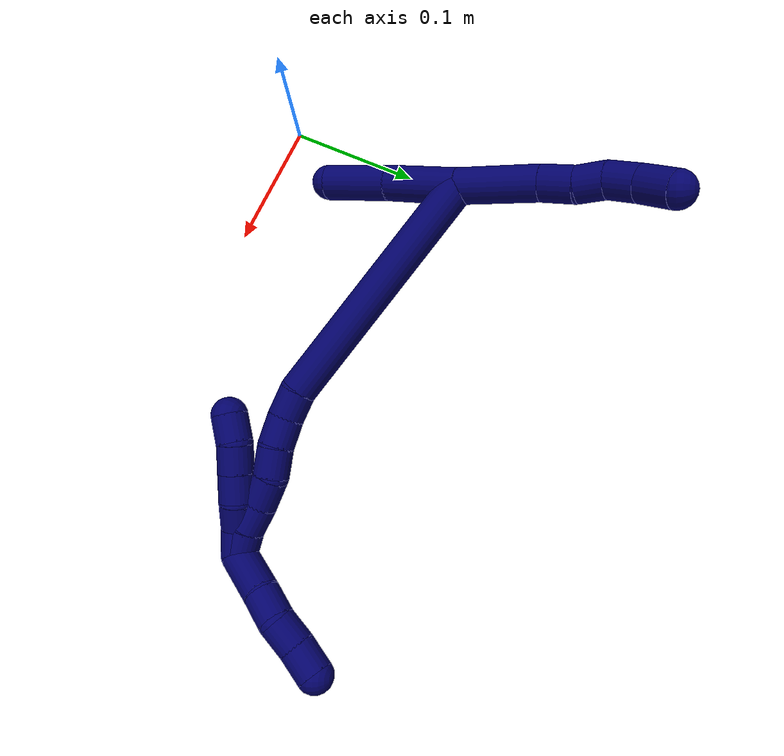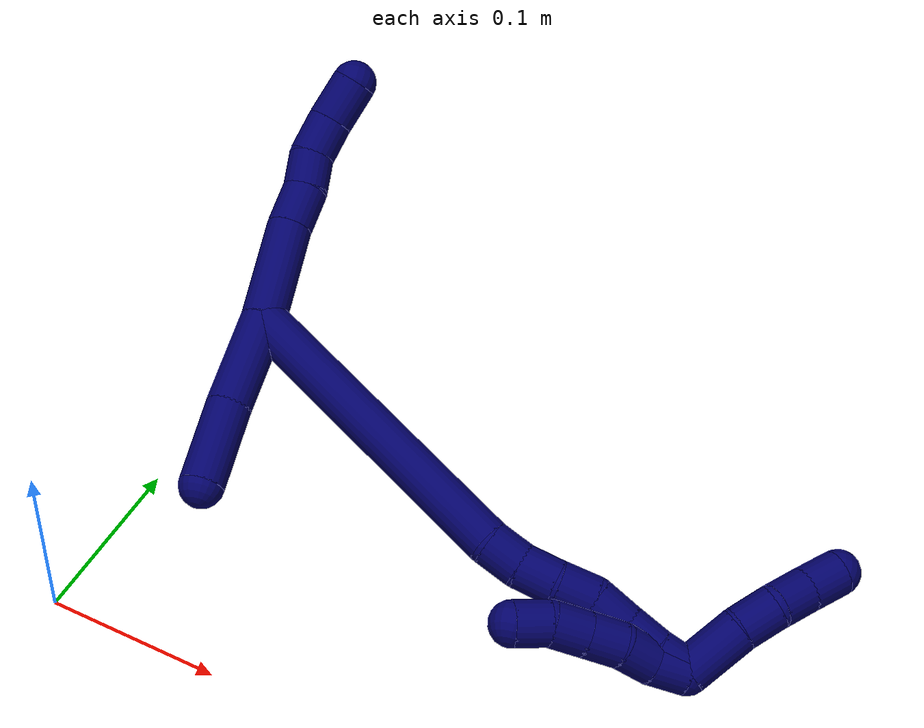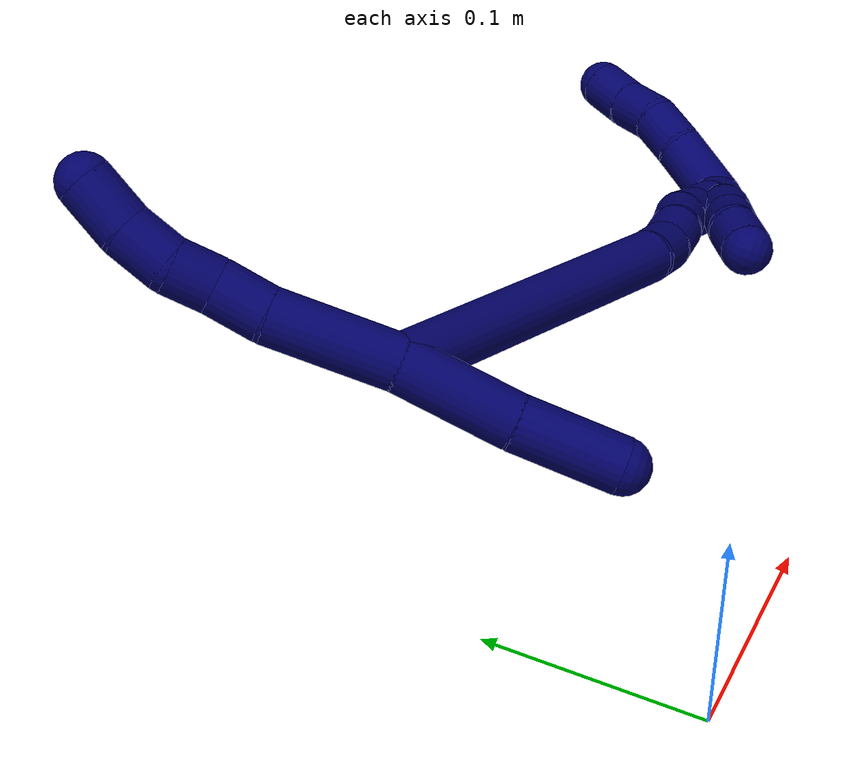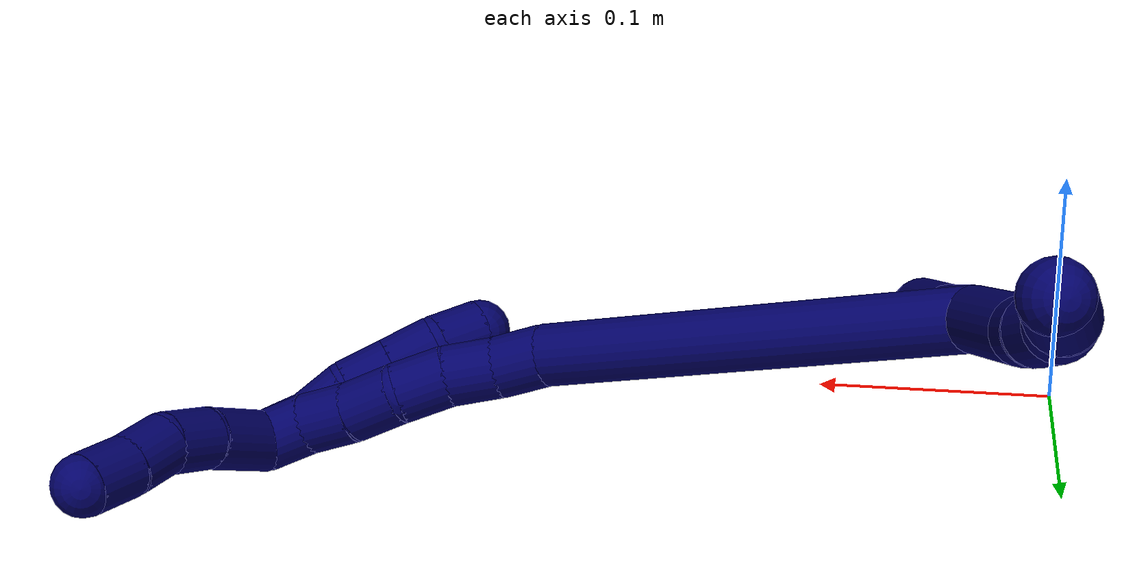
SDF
<sdf version="1.7">
 <world name="default">
  <model name="7">
   <static>0</static>
   <link name="7">
    <collision name="collision-cylinder-e_1_2_8">
     <pose>-7.5e-05 1.5e-05 0.028729 -0.000519 -0.002612 1e-06</pose>
     <geometry><cylinder><radius>0.0125</radius><length>0.057459</length></cylinder></geometry>
     <surface>
      <friction><ode><mu>1.16</mu><mu2>1.16</mu2><slip1>0</slip1><slip2>0</slip2></ode></friction>
      <contact><ode><kp>1e+06</kp><kd>1</kd><max_vel>0</max_vel><min_depth>0.001</min_depth></ode></contact>
     </surface>
    </collision>
    <visual name="visual-cylinder-e_1_2_8">
     <pose>-7.5e-05 1.5e-05 0.028729 -0.000519 -0.002612 1e-06</pose>
     <geometry><cylinder><radius>0.0125</radius><length>0.057459</length></cylinder></geometry>
     <material><ambient>0.003922 0 0.403922 1</ambient></material>
    </visual>
    <collision name="collision-cylinder-e_2_8_9">
     <pose>7.7e-05 -0.001999 0.069347 0.169043 0.018825 0.001595</pose>
     <geometry><cylinder><radius>0.0125</radius><length>0.024125</length></cylinder></geometry>
     <surface>
      <friction><ode><mu>1.16</mu><mu2>1.16</mu2><slip1>0</slip1><slip2>0</slip2></ode></friction>
      <contact><ode><kp>1e+06</kp><kd>1</kd><max_vel>0</max_vel><min_depth>0.001</min_depth></ode></contact>
     </surface>
    </collision>
    <visual name="visual-cylinder-e_2_8_9">
     <pose>7.7e-05 -0.001999 0.069347 0.169043 0.018825 0.001595</pose>
     <geometry><cylinder><radius>0.0125</radius><length>0.024125</length></cylinder></geometry>
     <material><ambient>0.003922 0 0.403922 1</ambient></material>
    </visual>
    <collision name="collision-cylinder-e_3_9_10">
     <pose>-0.001193 -0.004576 0.091278 0.05446 -0.147723 -0.004031</pose>
     <geometry><cylinder><radius>0.0125</radius><length>0.020337</length></cylinder></geometry>
     <surface>
      <friction><ode><mu>1.16</mu><mu2>1.16</mu2><slip1>0</slip1><slip2>0</slip2></ode></friction>
      <contact><ode><kp>1e+06</kp><kd>1</kd><max_vel>0</max_vel><min_depth>0.001</min_depth></ode></contact>
     </surface>
    </collision>
    <visual name="visual-cylinder-e_3_9_10">
     <pose>-0.001193 -0.004576 0.091278 0.05446 -0.147723 -0.004031</pose>
     <geometry><cylinder><radius>0.0125</radius><length>0.020337</length></cylinder></geometry>
     <material><ambient>0.003922 0 0.403922 1</ambient></material>
    </visual>
    <collision name="collision-cylinder-e_4_10_11">
     <pose>-0.00258 -0.008863 0.111946 0.338441 0.009744 0.001665</pose>
     <geometry><cylinder><radius>0.0125</radius><length>0.022529</length></cylinder></geometry>
     <surface>
      <friction><ode><mu>1.16</mu><mu2>1.16</mu2><slip1>0</slip1><slip2>0</slip2></ode></friction>
      <contact><ode><kp>1e+06</kp><kd>1</kd><max_vel>0</max_vel><min_depth>0.001</min_depth></ode></contact>
     </surface>
    </collision>
    <visual name="visual-cylinder-e_4_10_11">
     <pose>-0.00258 -0.008863 0.111946 0.338441 0.009744 0.001665</pose>
     <geometry><cylinder><radius>0.0125</radius><length>0.022529</length></cylinder></geometry>
     <material><ambient>0.003922 0 0.403922 1</ambient></material>
    </visual>
    <collision name="collision-cylinder-e_5_11_6">
     <pose>-0.002725 -0.018938 0.133662 0.518947 -0.019974 -0.005302</pose>
     <geometry><cylinder><radius>0.0125</radius><length>0.02555</length></cylinder></geometry>
     <surface>
      <friction><ode><mu>1.16</mu><mu2>1.16</mu2><slip1>0</slip1><slip2>0</slip2></ode></friction>
      <contact><ode><kp>1e+06</kp><kd>1</kd><max_vel>0</max_vel><min_depth>0.001</min_depth></ode></contact>
     </surface>
    </collision>
    <visual name="visual-cylinder-e_5_11_6">
     <pose>-0.002725 -0.018938 0.133662 0.518947 -0.019974 -0.005302</pose>
     <geometry><cylinder><radius>0.0125</radius><length>0.02555</length></cylinder></geometry>
     <material><ambient>0.003922 0 0.403922 1</ambient></material>
    </visual>
    <collision name="collision-cylinder-e_1_2_12">
     <pose>-0.000745 0.003403 -0.026134 -3.01211 -0.028269 0.429364</pose>
     <geometry><cylinder><radius>0.0125</radius><length>0.05273</length></cylinder></geometry>
     <surface>
      <friction><ode><mu>1.16</mu><mu2>1.16</mu2><slip1>0</slip1><slip2>0</slip2></ode></friction>
      <contact><ode><kp>1e+06</kp><kd>1</kd><max_vel>0</max_vel><min_depth>0.001</min_depth></ode></contact>
     </surface>
    </collision>
    <visual name="visual-cylinder-e_1_2_12">
     <pose>-0.000745 0.003403 -0.026134 -3.01211 -0.028269 0.429364</pose>
     <geometry><cylinder><radius>0.0125</radius><length>0.05273</length></cylinder></geometry>
     <material><ambient>0.003922 0 0.403922 1</ambient></material>
    </visual>
    <collision name="collision-cylinder-e_2_12_5">
     <pose>-0.002142 0.007856 -0.07587 -3.0971 -0.027571 1.10942</pose>
     <geometry><cylinder><radius>0.0125</radius><length>0.04727</length></cylinder></geometry>
     <surface>
      <friction><ode><mu>1.16</mu><mu2>1.16</mu2><slip1>0</slip1><slip2>0</slip2></ode></friction>
      <contact><ode><kp>1e+06</kp><kd>1</kd><max_vel>0</max_vel><min_depth>0.001</min_depth></ode></contact>
     </surface>
    </collision>
    <visual name="visual-cylinder-e_2_12_5">
     <pose>-0.002142 0.007856 -0.07587 -3.0971 -0.027571 1.10942</pose>
     <geometry><cylinder><radius>0.0125</radius><length>0.04727</length></cylinder></geometry>
     <material><ambient>0.003922 0 0.403922 1</ambient></material>
    </visual>
    <collision name="collision-cylinder-e_1_2_13">
     <pose>0.050866 -0.052477 -0.04917 2.32367 0.615621 1.26577</pose>
     <geometry><cylinder><radius>0.0125</radius><length>0.176169</length></cylinder></geometry>
     <surface>
      <friction><ode><mu>1.16</mu><mu2>1.16</mu2><slip1>0</slip1><slip2>0</slip2></ode></friction>
      <contact><ode><kp>1e+06</kp><kd>1</kd><max_vel>0</max_vel><min_depth>0.001</min_depth></ode></contact>
     </surface>
    </collision>
    <visual name="visual-cylinder-e_1_2_13">
     <pose>0.050866 -0.052477 -0.04917 2.32367 0.615621 1.26577</pose>
     <geometry><cylinder><radius>0.0125</radius><length>0.176169</length></cylinder></geometry>
     <material><ambient>0.003922 0 0.403922 1</ambient></material>
    </visual>
    <collision name="collision-cylinder-e_2_13_14">
     <pose>0.109162 -0.110578 -0.102316 2.18611 0.823314 1.40116</pose>
     <geometry><cylinder><radius>0.0125</radius><length>0.020262</length></cylinder></geometry>
     <surface>
      <friction><ode><mu>1.16</mu><mu2>1.16</mu2><slip1>0</slip1><slip2>0</slip2></ode></friction>
      <contact><ode><kp>1e+06</kp><kd>1</kd><max_vel>0</max_vel><min_depth>0.001</min_depth></ode></contact>
     </surface>
    </collision>
    <visual name="visual-cylinder-e_2_13_14">
     <pose>0.109162 -0.110578 -0.102316 2.18611 0.823314 1.40116</pose>
     <geometry><cylinder><radius>0.0125</radius><length>0.020262</length></cylinder></geometry>
     <material><ambient>0.003922 0 0.403922 1</ambient></material>
    </visual>
    <collision name="collision-cylinder-e_3_14_15">
     <pose>0.124027 -0.123216 -0.108755 1.9086 0.785476 1.05802</pose>
     <geometry><cylinder><radius>0.0125</radius><length>0.021026</length></cylinder></geometry>
     <surface>
      <friction><ode><mu>1.16</mu><mu2>1.16</mu2><slip1>0</slip1><slip2>0</slip2></ode></friction>
      <contact><ode><kp>1e+06</kp><kd>1</kd><max_vel>0</max_vel><min_depth>0.001</min_depth></ode></contact>
     </surface>
    </collision>
    <visual name="visual-cylinder-e_3_14_15">
     <pose>0.124027 -0.123216 -0.108755 1.9086 0.785476 1.05802</pose>
     <geometry><cylinder><radius>0.0125</radius><length>0.021026</length></cylinder></geometry>
     <material><ambient>0.003922 0 0.403922 1</ambient></material>
    </visual>
    <collision name="collision-cylinder-e_4_15_16">
     <pose>0.140035 -0.136043 -0.112591 1.80269 0.962254 1.1663</pose>
     <geometry><cylinder><radius>0.0125</radius><length>0.020899</length></cylinder></geometry>
     <surface>
      <friction><ode><mu>1.16</mu><mu2>1.16</mu2><slip1>0</slip1><slip2>0</slip2></ode></friction>
      <contact><ode><kp>1e+06</kp><kd>1</kd><max_vel>0</max_vel><min_depth>0.001</min_depth></ode></contact>
     </surface>
    </collision>
    <visual name="visual-cylinder-e_4_15_16">
     <pose>0.140035 -0.136043 -0.112591 1.80269 0.962254 1.1663</pose>
     <geometry><cylinder><radius>0.0125</radius><length>0.020899</length></cylinder></geometry>
     <material><ambient>0.003922 0 0.403922 1</ambient></material>
    </visual>
    <collision name="collision-cylinder-e_5_16_17">
     <pose>0.157168 -0.146664 -0.118436 2.32005 0.916407 1.69482</pose>
     <geometry><cylinder><radius>0.0125</radius><length>0.021575</length></cylinder></geometry>
     <surface>
      <friction><ode><mu>1.16</mu><mu2>1.16</mu2><slip1>0</slip1><slip2>0</slip2></ode></friction>
      <contact><ode><kp>1e+06</kp><kd>1</kd><max_vel>0</max_vel><min_depth>0.001</min_depth></ode></contact>
     </surface>
    </collision>
    <visual name="visual-cylinder-e_5_16_17">
     <pose>0.157168 -0.146664 -0.118436 2.32005 0.916407 1.69482</pose>
     <geometry><cylinder><radius>0.0125</radius><length>0.021575</length></cylinder></geometry>
     <material><ambient>0.003922 0 0.403922 1</ambient></material>
    </visual>
    <collision name="collision-cylinder-e_6_17_18">
     <pose>0.172986 -0.156857 -0.12724 2.24818 0.809971 1.46004</pose>
     <geometry><cylinder><radius>0.0125</radius><length>0.020045</length></cylinder></geometry>
     <surface>
      <friction><ode><mu>1.16</mu><mu2>1.16</mu2><slip1>0</slip1><slip2>0</slip2></ode></friction>
      <contact><ode><kp>1e+06</kp><kd>1</kd><max_vel>0</max_vel><min_depth>0.001</min_depth></ode></contact>
     </surface>
    </collision>
    <visual name="visual-cylinder-e_6_17_18">
     <pose>0.172986 -0.156857 -0.12724 2.24818 0.809971 1.46004</pose>
     <geometry><cylinder><radius>0.0125</radius><length>0.020045</length></cylinder></geometry>
     <material><ambient>0.003922 0 0.403922 1</ambient></material>
    </visual>
    <collision name="collision-cylinder-e_7_18_1">
     <pose>0.188522 -0.167064 -0.134478 2.11327 0.973431 1.50563</pose>
     <geometry><cylinder><radius>0.0125</radius><length>0.020023</length></cylinder></geometry>
     <surface>
      <friction><ode><mu>1.16</mu><mu2>1.16</mu2><slip1>0</slip1><slip2>0</slip2></ode></friction>
      <contact><ode><kp>1e+06</kp><kd>1</kd><max_vel>0</max_vel><min_depth>0.001</min_depth></ode></contact>
     </surface>
    </collision>
    <visual name="visual-cylinder-e_7_18_1">
     <pose>0.188522 -0.167064 -0.134478 2.11327 0.973431 1.50563</pose>
     <geometry><cylinder><radius>0.0125</radius><length>0.020023</length></cylinder></geometry>
     <material><ambient>0.003922 0 0.403922 1</ambient></material>
    </visual>
    <collision name="collision-cylinder-e_1_1_19">
     <pose>0.201733 -0.182604 -0.124195 0.682309 0.282517 0.100891</pose>
     <geometry><cylinder><radius>0.0125</radius><length>0.035393</length></cylinder></geometry>
     <surface>
      <friction><ode><mu>1.16</mu><mu2>1.16</mu2><slip1>0</slip1><slip2>0</slip2></ode></friction>
      <contact><ode><kp>1e+06</kp><kd>1</kd><max_vel>0</max_vel><min_depth>0.001</min_depth></ode></contact>
     </surface>
    </collision>
    <visual name="visual-cylinder-e_1_1_19">
     <pose>0.201733 -0.182604 -0.124195 0.682309 0.282517 0.100891</pose>
     <geometry><cylinder><radius>0.0125</radius><length>0.035393</length></cylinder></geometry>
     <material><ambient>0.003922 0 0.403922 1</ambient></material>
    </visual>
    <collision name="collision-cylinder-e_2_19_20">
     <pose>0.211361 -0.199742 -0.103363 0.698814 0.439654 0.162464</pose>
     <geometry><cylinder><radius>0.0125</radius><length>0.02206</length></cylinder></geometry>
     <surface>
      <friction><ode><mu>1.16</mu><mu2>1.16</mu2><slip1>0</slip1><slip2>0</slip2></ode></friction>
      <contact><ode><kp>1e+06</kp><kd>1</kd><max_vel>0</max_vel><min_depth>0.001</min_depth></ode></contact>
     </surface>
    </collision>
    <visual name="visual-cylinder-e_2_19_20">
     <pose>0.211361 -0.199742 -0.103363 0.698814 0.439654 0.162464</pose>
     <geometry><cylinder><radius>0.0125</radius><length>0.02206</length></cylinder></geometry>
     <material><ambient>0.003922 0 0.403922 1</ambient></material>
    </visual>
    <collision name="collision-cylinder-e_3_20_21">
     <pose>0.222721 -0.209601 -0.088503 0.444539 0.694868 0.163318</pose>
     <geometry><cylinder><radius>0.0125</radius><length>0.020818</length></cylinder></geometry>
     <surface>
      <friction><ode><mu>1.16</mu><mu2>1.16</mu2><slip1>0</slip1><slip2>0</slip2></ode></friction>
      <contact><ode><kp>1e+06</kp><kd>1</kd><max_vel>0</max_vel><min_depth>0.001</min_depth></ode></contact>
     </surface>
    </collision>
    <visual name="visual-cylinder-e_3_20_21">
     <pose>0.222721 -0.209601 -0.088503 0.444539 0.694868 0.163318</pose>
     <geometry><cylinder><radius>0.0125</radius><length>0.020818</length></cylinder></geometry>
     <material><ambient>0.003922 0 0.403922 1</ambient></material>
    </visual>
    <collision name="collision-cylinder-e_4_21_4">
     <pose>0.235866 -0.217745 -0.073944 0.57005 0.639142 0.193313</pose>
     <geometry><cylinder><radius>0.0125</radius><length>0.021729</length></cylinder></geometry>
     <surface>
      <friction><ode><mu>1.16</mu><mu2>1.16</mu2><slip1>0</slip1><slip2>0</slip2></ode></friction>
      <contact><ode><kp>1e+06</kp><kd>1</kd><max_vel>0</max_vel><min_depth>0.001</min_depth></ode></contact>
     </surface>
    </collision>
    <visual name="visual-cylinder-e_4_21_4">
     <pose>0.235866 -0.217745 -0.073944 0.57005 0.639142 0.193313</pose>
     <geometry><cylinder><radius>0.0125</radius><length>0.021729</length></cylinder></geometry>
     <material><ambient>0.003922 0 0.403922 1</ambient></material>
    </visual>
    <collision name="collision-cylinder-e_1_1_22">
     <pose>0.188159 -0.166854 -0.137509 -1.59541 -1.04327 1.06467</pose>
     <geometry><cylinder><radius>0.0125</radius><length>0.02</length></cylinder></geometry>
     <surface>
      <friction><ode><mu>1.16</mu><mu2>1.16</mu2><slip1>0</slip1><slip2>0</slip2></ode></friction>
      <contact><ode><kp>1e+06</kp><kd>1</kd><max_vel>0</max_vel><min_depth>0.001</min_depth></ode></contact>
     </surface>
    </collision>
    <visual name="visual-cylinder-e_1_1_22">
     <pose>0.188159 -0.166854 -0.137509 -1.59541 -1.04327 1.06467</pose>
     <geometry><cylinder><radius>0.0125</radius><length>0.02</length></cylinder></geometry>
     <material><ambient>0.003922 0 0.403922 1</ambient></material>
    </visual>
    <collision name="collision-cylinder-e_2_22_23">
     <pose>0.169875 -0.159303 -0.136821 -1.2589 -1.30292 1.01383</pose>
     <geometry><cylinder><radius>0.0125</radius><length>0.02</length></cylinder></geometry>
     <surface>
      <friction><ode><mu>1.16</mu><mu2>1.16</mu2><slip1>0</slip1><slip2>0</slip2></ode></friction>
      <contact><ode><kp>1e+06</kp><kd>1</kd><max_vel>0</max_vel><min_depth>0.001</min_depth></ode></contact>
     </surface>
    </collision>
    <visual name="visual-cylinder-e_2_22_23">
     <pose>0.169875 -0.159303 -0.136821 -1.2589 -1.30292 1.01383</pose>
     <geometry><cylinder><radius>0.0125</radius><length>0.02</length></cylinder></geometry>
     <material><ambient>0.003922 0 0.403922 1</ambient></material>
    </visual>
    <collision name="collision-cylinder-e_3_23_24">
     <pose>0.151362 -0.15217 -0.136205 -1.61341 -1.09079 1.12897</pose>
     <geometry><cylinder><radius>0.0125</radius><length>0.02</length></cylinder></geometry>
     <surface>
      <friction><ode><mu>1.16</mu><mu2>1.16</mu2><slip1>0</slip1><slip2>0</slip2></ode></friction>
      <contact><ode><kp>1e+06</kp><kd>1</kd><max_vel>0</max_vel><min_depth>0.001</min_depth></ode></contact>
     </surface>
    </collision>
    <visual name="visual-cylinder-e_3_23_24">
     <pose>0.151362 -0.15217 -0.136205 -1.61341 -1.09079 1.12897</pose>
     <geometry><cylinder><radius>0.0125</radius><length>0.02</length></cylinder></geometry>
     <material><ambient>0.003922 0 0.403922 1</ambient></material>
    </visual>
    <collision name="collision-cylinder-e_4_24_25">
     <pose>0.133632 -0.142926 -0.136652 -1.62481 -1.08862 1.13709</pose>
     <geometry><cylinder><radius>0.0125</radius><length>0.02</length></cylinder></geometry>
     <surface>
      <friction><ode><mu>1.16</mu><mu2>1.16</mu2><slip1>0</slip1><slip2>0</slip2></ode></friction>
      <contact><ode><kp>1e+06</kp><kd>1</kd><max_vel>0</max_vel><min_depth>0.001</min_depth></ode></contact>
     </surface>
    </collision>
    <visual name="visual-cylinder-e_4_24_25">
     <pose>0.133632 -0.142926 -0.136652 -1.62481 -1.08862 1.13709</pose>
     <geometry><cylinder><radius>0.0125</radius><length>0.02</length></cylinder></geometry>
     <material><ambient>0.003922 0 0.403922 1</ambient></material>
    </visual>
    <collision name="collision-cylinder-e_5_25_3">
     <pose>0.117061 -0.132608 -0.139763 -2.03673 -0.880684 1.30527</pose>
     <geometry><cylinder><radius>0.0125</radius><length>0.02</length></cylinder></geometry>
     <surface>
      <friction><ode><mu>1.16</mu><mu2>1.16</mu2><slip1>0</slip1><slip2>0</slip2></ode></friction>
      <contact><ode><kp>1e+06</kp><kd>1</kd><max_vel>0</max_vel><min_depth>0.001</min_depth></ode></contact>
     </surface>
    </collision>
    <visual name="visual-cylinder-e_5_25_3">
     <pose>0.117061 -0.132608 -0.139763 -2.03673 -0.880684 1.30527</pose>
     <geometry><cylinder><radius>0.0125</radius><length>0.02</length></cylinder></geometry>
     <material><ambient>0.003922 0 0.403922 1</ambient></material>
    </visual>
    <collision name="collision-sphere-3">
     <pose>0.109349 -0.126921 -0.142623 0 -0 0</pose>
     <geometry><sphere><radius>0.0125</radius></sphere></geometry>
     <surface>
      <friction><ode><mu>1.16</mu><mu2>1.16</mu2><slip1>0</slip1><slip2>0</slip2></ode></friction>
      <contact><ode><kp>1e+06</kp><kd>1</kd><max_vel>0</max_vel><min_depth>0.001</min_depth></ode></contact>
     </surface>
    </collision>
    <visual name="visual-sphere-3">
     <pose>0.109349 -0.126921 -0.142623 0 -0 0</pose>
     <geometry><sphere><radius>0.0125</radius></sphere></geometry>
     <material><ambient>0.003922 0 0.403922 1</ambient></material>
    </visual>
    <collision name="collision-sphere-25">
     <pose>0.124772 -0.138296 -0.136903 0 -0 0</pose>
     <geometry><sphere><radius>0.0125</radius></sphere></geometry>
     <surface>
      <friction><ode><mu>1.16</mu><mu2>1.16</mu2><slip1>0</slip1><slip2>0</slip2></ode></friction>
      <contact><ode><kp>1e+06</kp><kd>1</kd><max_vel>0</max_vel><min_depth>0.001</min_depth></ode></contact>
     </surface>
    </collision>
    <visual name="visual-sphere-25">
     <pose>0.124772 -0.138296 -0.136903 0 -0 0</pose>
     <geometry><sphere><radius>0.0125</radius></sphere></geometry>
     <material><ambient>0.003922 0 0.403922 1</ambient></material>
    </visual>
    <collision name="collision-sphere-24">
     <pose>0.142492 -0.147556 -0.136402 0 -0 0</pose>
     <geometry><sphere><radius>0.0125</radius></sphere></geometry>
     <surface>
      <friction><ode><mu>1.16</mu><mu2>1.16</mu2><slip1>0</slip1><slip2>0</slip2></ode></friction>
      <contact><ode><kp>1e+06</kp><kd>1</kd><max_vel>0</max_vel><min_depth>0.001</min_depth></ode></contact>
     </surface>
    </collision>
    <visual name="visual-sphere-24">
     <pose>0.142492 -0.147556 -0.136402 0 -0 0</pose>
     <geometry><sphere><radius>0.0125</radius></sphere></geometry>
     <material><ambient>0.003922 0 0.403922 1</ambient></material>
    </visual>
    <collision name="collision-sphere-23">
     <pose>0.160232 -0.156784 -0.136008 0 -0 0</pose>
     <geometry><sphere><radius>0.0125</radius></sphere></geometry>
     <surface>
      <friction><ode><mu>1.16</mu><mu2>1.16</mu2><slip1>0</slip1><slip2>0</slip2></ode></friction>
      <contact><ode><kp>1e+06</kp><kd>1</kd><max_vel>0</max_vel><min_depth>0.001</min_depth></ode></contact>
     </surface>
    </collision>
    <visual name="visual-sphere-23">
     <pose>0.160232 -0.156784 -0.136008 0 -0 0</pose>
     <geometry><sphere><radius>0.0125</radius></sphere></geometry>
     <material><ambient>0.003922 0 0.403922 1</ambient></material>
    </visual>
    <collision name="collision-sphere-22">
     <pose>0.179519 -0.161822 -0.137633 0 -0 0</pose>
     <geometry><sphere><radius>0.0125</radius></sphere></geometry>
     <surface>
      <friction><ode><mu>1.16</mu><mu2>1.16</mu2><slip1>0</slip1><slip2>0</slip2></ode></friction>
      <contact><ode><kp>1e+06</kp><kd>1</kd><max_vel>0</max_vel><min_depth>0.001</min_depth></ode></contact>
     </surface>
    </collision>
    <visual name="visual-sphere-22">
     <pose>0.179519 -0.161822 -0.137633 0 -0 0</pose>
     <geometry><sphere><radius>0.0125</radius></sphere></geometry>
     <material><ambient>0.003922 0 0.403922 1</ambient></material>
    </visual>
    <collision name="collision-sphere-4">
     <pose>0.242347 -0.222451 -0.066603 0 -0 0</pose>
     <geometry><sphere><radius>0.0125</radius></sphere></geometry>
     <surface>
      <friction><ode><mu>1.16</mu><mu2>1.16</mu2><slip1>0</slip1><slip2>0</slip2></ode></friction>
      <contact><ode><kp>1e+06</kp><kd>1</kd><max_vel>0</max_vel><min_depth>0.001</min_depth></ode></contact>
     </surface>
    </collision>
    <visual name="visual-sphere-4">
     <pose>0.242347 -0.222451 -0.066603 0 -0 0</pose>
     <geometry><sphere><radius>0.0125</radius></sphere></geometry>
     <material><ambient>0.003922 0 0.403922 1</ambient></material>
    </visual>
    <collision name="collision-sphere-21">
     <pose>0.229385 -0.213039 -0.081285 0 -0 0</pose>
     <geometry><sphere><radius>0.0125</radius></sphere></geometry>
     <surface>
      <friction><ode><mu>1.16</mu><mu2>1.16</mu2><slip1>0</slip1><slip2>0</slip2></ode></friction>
      <contact><ode><kp>1e+06</kp><kd>1</kd><max_vel>0</max_vel><min_depth>0.001</min_depth></ode></contact>
     </surface>
    </collision>
    <visual name="visual-sphere-21">
     <pose>0.229385 -0.213039 -0.081285 0 -0 0</pose>
     <geometry><sphere><radius>0.0125</radius></sphere></geometry>
     <material><ambient>0.003922 0 0.403922 1</ambient></material>
    </visual>
    <collision name="collision-sphere-20">
     <pose>0.216056 -0.206163 -0.095721 0 -0 0</pose>
     <geometry><sphere><radius>0.0125</radius></sphere></geometry>
     <surface>
      <friction><ode><mu>1.16</mu><mu2>1.16</mu2><slip1>0</slip1><slip2>0</slip2></ode></friction>
      <contact><ode><kp>1e+06</kp><kd>1</kd><max_vel>0</max_vel><min_depth>0.001</min_depth></ode></contact>
     </surface>
    </collision>
    <visual name="visual-sphere-20">
     <pose>0.216056 -0.206163 -0.095721 0 -0 0</pose>
     <geometry><sphere><radius>0.0125</radius></sphere></geometry>
     <material><ambient>0.003922 0 0.403922 1</ambient></material>
    </visual>
    <collision name="collision-sphere-6">
     <pose>-0.00298 -0.025272 0.144753 0 -0 0</pose>
     <geometry><sphere><radius>0.0125</radius></sphere></geometry>
     <surface>
      <friction><ode><mu>1.16</mu><mu2>1.16</mu2><slip1>0</slip1><slip2>0</slip2></ode></friction>
      <contact><ode><kp>1e+06</kp><kd>1</kd><max_vel>0</max_vel><min_depth>0.001</min_depth></ode></contact>
     </surface>
    </collision>
    <visual name="visual-sphere-6">
     <pose>-0.00298 -0.025272 0.144753 0 -0 0</pose>
     <geometry><sphere><radius>0.0125</radius></sphere></geometry>
     <material><ambient>0.003922 0 0.403922 1</ambient></material>
    </visual>
    <collision name="collision-sphere-11">
     <pose>-0.00247 -0.012603 0.122571 0 -0 0</pose>
     <geometry><sphere><radius>0.0125</radius></sphere></geometry>
     <surface>
      <friction><ode><mu>1.16</mu><mu2>1.16</mu2><slip1>0</slip1><slip2>0</slip2></ode></friction>
      <contact><ode><kp>1e+06</kp><kd>1</kd><max_vel>0</max_vel><min_depth>0.001</min_depth></ode></contact>
     </surface>
    </collision>
    <visual name="visual-sphere-11">
     <pose>-0.00247 -0.012603 0.122571 0 -0 0</pose>
     <geometry><sphere><radius>0.0125</radius></sphere></geometry>
     <material><ambient>0.003922 0 0.403922 1</ambient></material>
    </visual>
    <collision name="collision-sphere-10">
     <pose>-0.002689 -0.005123 0.101321 0 -0 0</pose>
     <geometry><sphere><radius>0.0125</radius></sphere></geometry>
     <surface>
      <friction><ode><mu>1.16</mu><mu2>1.16</mu2><slip1>0</slip1><slip2>0</slip2></ode></friction>
      <contact><ode><kp>1e+06</kp><kd>1</kd><max_vel>0</max_vel><min_depth>0.001</min_depth></ode></contact>
     </surface>
    </collision>
    <visual name="visual-sphere-10">
     <pose>-0.002689 -0.005123 0.101321 0 -0 0</pose>
     <geometry><sphere><radius>0.0125</radius></sphere></geometry>
     <material><ambient>0.003922 0 0.403922 1</ambient></material>
    </visual>
    <collision name="collision-sphere-9">
     <pose>0.000304 -0.004028 0.081235 0 -0 0</pose>
     <geometry><sphere><radius>0.0125</radius></sphere></geometry>
     <surface>
      <friction><ode><mu>1.16</mu><mu2>1.16</mu2><slip1>0</slip1><slip2>0</slip2></ode></friction>
      <contact><ode><kp>1e+06</kp><kd>1</kd><max_vel>0</max_vel><min_depth>0.001</min_depth></ode></contact>
     </surface>
    </collision>
    <visual name="visual-sphere-9">
     <pose>0.000304 -0.004028 0.081235 0 -0 0</pose>
     <geometry><sphere><radius>0.0125</radius></sphere></geometry>
     <material><ambient>0.003922 0 0.403922 1</ambient></material>
    </visual>
    <collision name="collision-sphere-2">
     <geometry><sphere><radius>0.0125</radius></sphere></geometry>
     <surface>
      <friction><ode><mu>1.16</mu><mu2>1.16</mu2><slip1>0</slip1><slip2>0</slip2></ode></friction>
      <contact><ode><kp>1e+06</kp><kd>1</kd><max_vel>0</max_vel><min_depth>0.001</min_depth></ode></contact>
     </surface>
    </collision>
    <visual name="visual-sphere-2">
     <geometry><sphere><radius>0.0125</radius></sphere></geometry>
     <material><ambient>0.003922 0 0.403922 1</ambient></material>
    </visual>
    <collision name="collision-sphere-19">
     <pose>0.206667 -0.193321 -0.111005 0 -0 0</pose>
     <geometry><sphere><radius>0.0125</radius></sphere></geometry>
     <surface>
      <friction><ode><mu>1.16</mu><mu2>1.16</mu2><slip1>0</slip1><slip2>0</slip2></ode></friction>
      <contact><ode><kp>1e+06</kp><kd>1</kd><max_vel>0</max_vel><min_depth>0.001</min_depth></ode></contact>
     </surface>
    </collision>
    <visual name="visual-sphere-19">
     <pose>0.206667 -0.193321 -0.111005 0 -0 0</pose>
     <geometry><sphere><radius>0.0125</radius></sphere></geometry>
     <material><ambient>0.003922 0 0.403922 1</ambient></material>
    </visual>
    <collision name="collision-sphere-8">
     <pose>-0.00015 3e-05 0.057459 0 -0 0</pose>
     <geometry><sphere><radius>0.0125</radius></sphere></geometry>
     <surface>
      <friction><ode><mu>1.16</mu><mu2>1.16</mu2><slip1>0</slip1><slip2>0</slip2></ode></friction>
      <contact><ode><kp>1e+06</kp><kd>1</kd><max_vel>0</max_vel><min_depth>0.001</min_depth></ode></contact>
     </surface>
    </collision>
    <visual name="visual-sphere-8">
     <pose>-0.00015 3e-05 0.057459 0 -0 0</pose>
     <geometry><sphere><radius>0.0125</radius></sphere></geometry>
     <material><ambient>0.003922 0 0.403922 1</ambient></material>
    </visual>
    <collision name="collision-sphere-12">
     <pose>-0.00149 0.006806 -0.052268 0 -0 0</pose>
     <geometry><sphere><radius>0.0125</radius></sphere></geometry>
     <surface>
      <friction><ode><mu>1.16</mu><mu2>1.16</mu2><slip1>0</slip1><slip2>0</slip2></ode></friction>
      <contact><ode><kp>1e+06</kp><kd>1</kd><max_vel>0</max_vel><min_depth>0.001</min_depth></ode></contact>
     </surface>
    </collision>
    <visual name="visual-sphere-12">
     <pose>-0.00149 0.006806 -0.052268 0 -0 0</pose>
     <geometry><sphere><radius>0.0125</radius></sphere></geometry>
     <material><ambient>0.003922 0 0.403922 1</ambient></material>
    </visual>
    <collision name="collision-sphere-5">
     <pose>-0.002794 0.008907 -0.099473 0 -0 0</pose>
     <geometry><sphere><radius>0.0125</radius></sphere></geometry>
     <surface>
      <friction><ode><mu>1.16</mu><mu2>1.16</mu2><slip1>0</slip1><slip2>0</slip2></ode></friction>
      <contact><ode><kp>1e+06</kp><kd>1</kd><max_vel>0</max_vel><min_depth>0.001</min_depth></ode></contact>
     </surface>
    </collision>
    <visual name="visual-sphere-5">
     <pose>-0.002794 0.008907 -0.099473 0 -0 0</pose>
     <geometry><sphere><radius>0.0125</radius></sphere></geometry>
     <material><ambient>0.003922 0 0.403922 1</ambient></material>
    </visual>
    <collision name="collision-sphere-13">
     <pose>0.101732 -0.104954 -0.09834 0 -0 0</pose>
     <geometry><sphere><radius>0.0125</radius></sphere></geometry>
     <surface>
      <friction><ode><mu>1.16</mu><mu2>1.16</mu2><slip1>0</slip1><slip2>0</slip2></ode></friction>
      <contact><ode><kp>1e+06</kp><kd>1</kd><max_vel>0</max_vel><min_depth>0.001</min_depth></ode></contact>
     </surface>
    </collision>
    <visual name="visual-sphere-13">
     <pose>0.101732 -0.104954 -0.09834 0 -0 0</pose>
     <geometry><sphere><radius>0.0125</radius></sphere></geometry>
     <material><ambient>0.003922 0 0.403922 1</ambient></material>
    </visual>
    <collision name="collision-sphere-14">
     <pose>0.116592 -0.116202 -0.106291 0 -0 0</pose>
     <geometry><sphere><radius>0.0125</radius></sphere></geometry>
     <surface>
      <friction><ode><mu>1.16</mu><mu2>1.16</mu2><slip1>0</slip1><slip2>0</slip2></ode></friction>
      <contact><ode><kp>1e+06</kp><kd>1</kd><max_vel>0</max_vel><min_depth>0.001</min_depth></ode></contact>
     </surface>
    </collision>
    <visual name="visual-sphere-14">
     <pose>0.116592 -0.116202 -0.106291 0 -0 0</pose>
     <geometry><sphere><radius>0.0125</radius></sphere></geometry>
     <material><ambient>0.003922 0 0.403922 1</ambient></material>
    </visual>
    <collision name="collision-sphere-15">
     <pose>0.131461 -0.130229 -0.111218 0 -0 0</pose>
     <geometry><sphere><radius>0.0125</radius></sphere></geometry>
     <surface>
      <friction><ode><mu>1.16</mu><mu2>1.16</mu2><slip1>0</slip1><slip2>0</slip2></ode></friction>
      <contact><ode><kp>1e+06</kp><kd>1</kd><max_vel>0</max_vel><min_depth>0.001</min_depth></ode></contact>
     </surface>
    </collision>
    <visual name="visual-sphere-15">
     <pose>0.131461 -0.130229 -0.111218 0 -0 0</pose>
     <geometry><sphere><radius>0.0125</radius></sphere></geometry>
     <material><ambient>0.003922 0 0.403922 1</ambient></material>
    </visual>
    <collision name="collision-sphere-16">
     <pose>0.148609 -0.141857 -0.113964 0 -0 0</pose>
     <geometry><sphere><radius>0.0125</radius></sphere></geometry>
     <surface>
      <friction><ode><mu>1.16</mu><mu2>1.16</mu2><slip1>0</slip1><slip2>0</slip2></ode></friction>
      <contact><ode><kp>1e+06</kp><kd>1</kd><max_vel>0</max_vel><min_depth>0.001</min_depth></ode></contact>
     </surface>
    </collision>
    <visual name="visual-sphere-16">
     <pose>0.148609 -0.141857 -0.113964 0 -0 0</pose>
     <geometry><sphere><radius>0.0125</radius></sphere></geometry>
     <material><ambient>0.003922 0 0.403922 1</ambient></material>
    </visual>
    <collision name="collision-sphere-17">
     <pose>0.165727 -0.151472 -0.122908 0 -0 0</pose>
     <geometry><sphere><radius>0.0125</radius></sphere></geometry>
     <surface>
      <friction><ode><mu>1.16</mu><mu2>1.16</mu2><slip1>0</slip1><slip2>0</slip2></ode></friction>
      <contact><ode><kp>1e+06</kp><kd>1</kd><max_vel>0</max_vel><min_depth>0.001</min_depth></ode></contact>
     </surface>
    </collision>
    <visual name="visual-sphere-17">
     <pose>0.165727 -0.151472 -0.122908 0 -0 0</pose>
     <geometry><sphere><radius>0.0125</radius></sphere></geometry>
     <material><ambient>0.003922 0 0.403922 1</ambient></material>
    </visual>
    <collision name="collision-sphere-18">
     <pose>0.180245 -0.162242 -0.131571 0 -0 0</pose>
     <geometry><sphere><radius>0.0125</radius></sphere></geometry>
     <surface>
      <friction><ode><mu>1.16</mu><mu2>1.16</mu2><slip1>0</slip1><slip2>0</slip2></ode></friction>
      <contact><ode><kp>1e+06</kp><kd>1</kd><max_vel>0</max_vel><min_depth>0.001</min_depth></ode></contact>
     </surface>
    </collision>
    <visual name="visual-sphere-18">
     <pose>0.180245 -0.162242 -0.131571 0 -0 0</pose>
     <geometry><sphere><radius>0.0125</radius></sphere></geometry>
     <material><ambient>0.003922 0 0.403922 1</ambient></material>
    </visual>
    <collision name="collision-sphere-1">
     <pose>0.1968 -0.171887 -0.137385 0 -0 0</pose>
     <geometry><sphere><radius>0.0125</radius></sphere></geometry>
     <surface>
      <friction><ode><mu>1.16</mu><mu2>1.16</mu2><slip1>0</slip1><slip2>0</slip2></ode></friction>
      <contact><ode><kp>1e+06</kp><kd>1</kd><max_vel>0</max_vel><min_depth>0.001</min_depth></ode></contact>
     </surface>
    </collision>
    <visual name="visual-sphere-1">
     <pose>0.1968 -0.171887 -0.137385 0 -0 0</pose>
     <geometry><sphere><radius>0.0125</radius></sphere></geometry>
     <material><ambient>0.003922 0 0.403922 1</ambient></material>
    </visual>
    <inertial>
     <pose>0.085082 -0.082517 -0.054513 0 -0 0</pose>
     <mass>0.75</mass>
     <inertia><ixx>0.000566</ixx><ixy>0</ixy><ixz>0</ixz><iyy>0.000488</iyy><iyz>0</iyz><izz>9e-06</izz></inertia>
    </inertial>
   </link>
   <pose>0.041372 0.156414 0.097626 -1.09419 0.836978 0.637804</pose>
  </model>
 </world>
</sdf>
